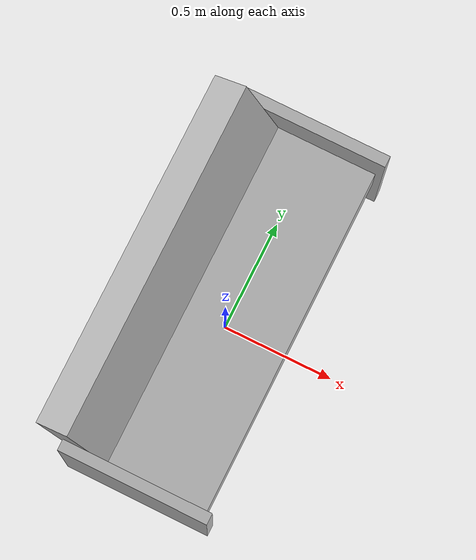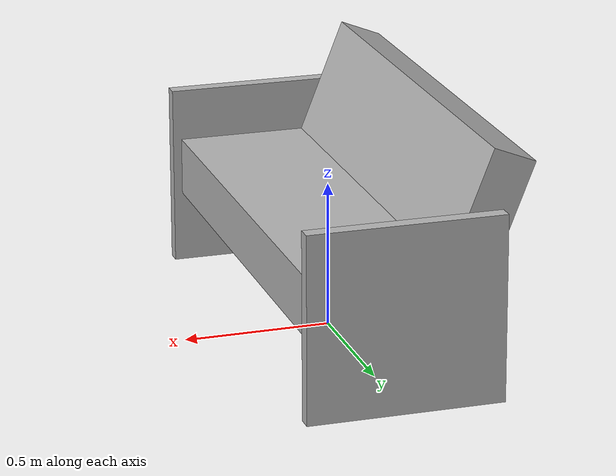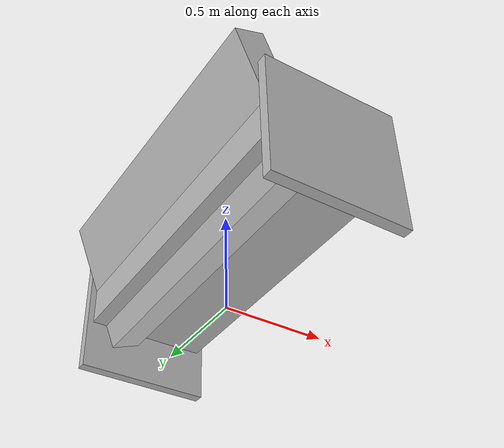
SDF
<?xml version="1.0" ?>
<sdf version="1.6">
  <model name="rwc2024/couch">
    <static>true</static>
    <link name="base_link">
      <collision name="base_col">
        <geometry>
          <box>
            <size>0.6 1.56 0.2</size>
          </box>
        </geometry>
      </collision>
      <visual name="base_vis">
        <geometry>
          <box>
            <size>0.6 1.56 0.2</size>
          </box>
        </geometry>
      </visual>
      <pose>0.0 0.0 0.35 0 0 0</pose>
    </link>
    <link name="right_armrest_link">
      <collision name="right_armrest_col">
        <geometry>
          <box>
            <size>0.66 0.05 0.63</size>
          </box>
        </geometry>
      </collision>
      <visual name="right_armrest_vis">
        <geometry>
          <box>
            <size>0.66 0.05 0.63</size>
          </box>
        </geometry>
      </visual>
      <pose>0.0 0.805 0.315 0 0 0</pose>
    </link>
    <link name="left_armrest_link">
      <collision name="left_armrest_col">
        <geometry>
          <box>
            <size>0.66 0.05 0.63</size>
          </box>
        </geometry>
      </collision>
      <visual name="left_armrest_vis">
        <geometry>
          <box>
            <size>0.66 0.05 0.63</size>
          </box>
        </geometry>
      </visual>
      <pose>0.0 -0.805 0.315 0 0 0</pose>
    </link>
    <link name="back_link">
      <collision name="back_col">
        <geometry>
          <box>
            <size>0.15 1.56 0.69</size>
          </box>
        </geometry>
      </collision>
      <visual name="back_vis">
        <geometry>
          <box>
            <size>0.15 1.56 0.69</size>
          </box>
        </geometry>
      </visual>
      <pose>-0.24 0 0.485 0 -0.377766658 0</pose>
    </link>
    <link name="on_top_of_couch_left">
      <virtual_volume name="on_top_of_vv">
        <geometry>
          <box>
            <size>0.35 0.42 0.3</size>
          </box>
        </geometry>
        <pose>0.075 0.34 0.65 0 0 0</pose>
      </virtual_volume>
    </link>
    <link name="on_top_of_couch_right">
      <virtual_volume name="on_top_of_vv">
        <geometry>
          <box>
            <size>0.35 0.42 0.3</size>
          </box>
        </geometry>
        <pose>0.075 -0.34 0.65 0 0 0</pose>
      </virtual_volume>
    </link>

    <link name="in_front_of">
      <virtual_volume name="in_front_of_vv">
        <geometry>
          <box>
            <size>0.2 1.22 0.01</size>
          </box>
        </geometry>
        <pose>0.8 0.0 0.005 0 0 0</pose>
      </virtual_volume>
    </link>
  </model>
</sdf>
